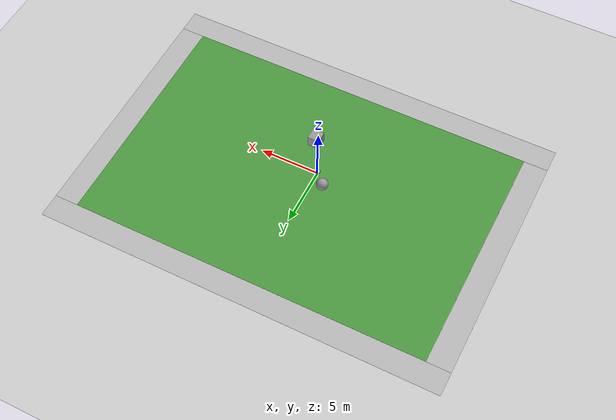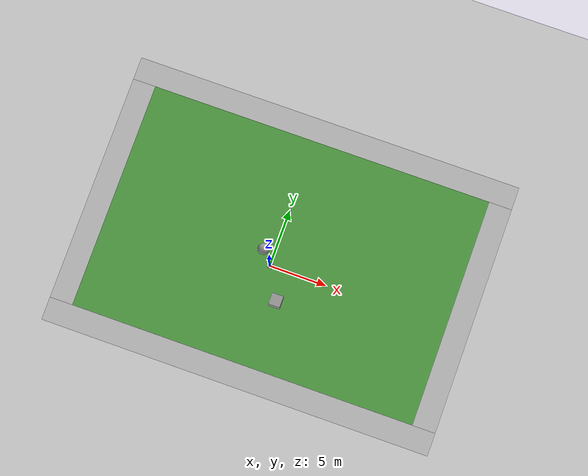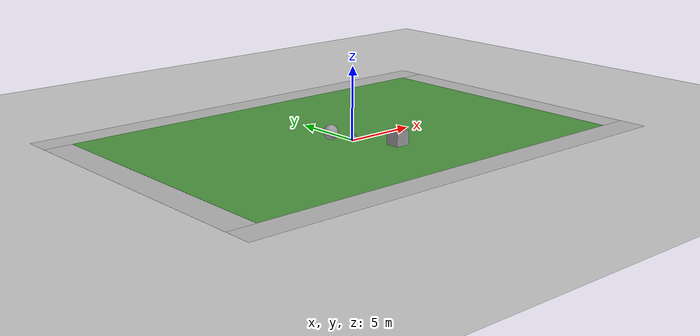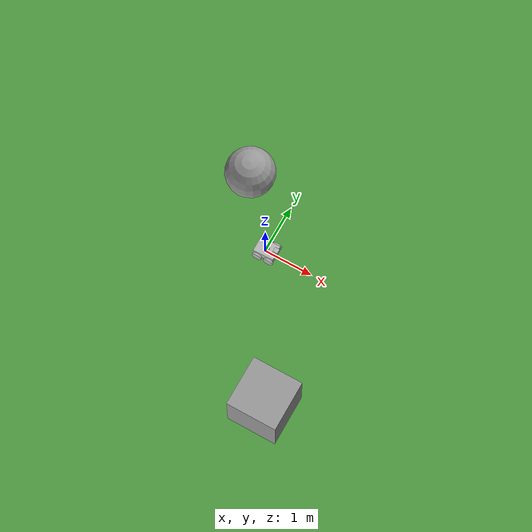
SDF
<sdf version="1.7">
 <world name="default">
  <light name="sun" type="directional">
   <pose>0 0 10 0 -0 0</pose>
   <diffuse>0.8 0.8 0.8 1</diffuse>
   <specular>0.2 0.2 0.2 1</specular>
   <attenuation>
    <range>1000</range>
    <constant>0.9</constant>
    <linear>0.01</linear>
    <quadratic>0.001</quadratic>
   </attenuation>
   <direction>-0.5 0.1 -0.9</direction>
   <spot><inner_angle>0</inner_angle><outer_angle>0</outer_angle><falloff>0</falloff></spot>
  </light>
  <model name="ground_plane">
   <static>1</static>
   <link name="link">
    <collision name="collision">
     <geometry><plane><normal>0 0 1</normal><size>100 100</size></plane></geometry>
     <surface><friction><ode><mu>100</mu><mu2>50</mu2></ode></friction></surface>
    </collision>
    <visual name="visual">
     <cast_shadows>0</cast_shadows>
     <geometry><plane><normal>0 0 1</normal><size>100 100</size></plane></geometry>
     <material>
      <script><uri>file://media/materials/scripts/gazebo.material</uri><name>Gazebo/Grey</name></script>
     </material>
    </visual>
   </link>
  </model>
  <gravity>0 0 -9.8</gravity>
  <magnetic_field>6e-06 2.3e-05 -4.2e-05</magnetic_field>
  <atmosphere type="adiabatic"/>
  <physics type="ode">
   <max_step_size>0.001</max_step_size>
   <real_time_factor>1</real_time_factor>
   <real_time_update_rate>1000</real_time_update_rate>
  </physics>
  <scene><ambient>0.4 0.4 0.4 1</ambient><background>0.7 0.7 0.7 1</background><shadows>1</shadows></scene>
  <spherical_coordinates>
   <surface_model>EARTH_WGS84</surface_model>
   <latitude_deg>43.6532</latitude_deg>
   <longitude_deg>-79.3832</longitude_deg>
   <elevation>0</elevation>
   <heading_deg>0</heading_deg>
  </spherical_coordinates>
  <model name="unit_box">
   <pose>1.51272 -2.71061 0.51 0 -0 0</pose>
   <link name="link">
    <inertial>
     <mass>1</mass>
     <inertia>
      <ixx>0.166667</ixx>
      <ixy>0</ixy>
      <ixz>0</ixz>
      <iyy>0.166667</iyy>
      <iyz>0</iyz>
      <izz>0.166667</izz>
     </inertia>
    </inertial>
    <collision name="collision"><geometry><box><size>1 1 1</size></box></geometry></collision>
    <visual name="visual">
     <geometry><box><size>1 1 1</size></box></geometry>
     <material>
      <script><name>Gazebo/Grey</name><uri>file://media/materials/scripts/gazebo.material</uri></script>
     </material>
    </visual>
   </link>
  </model>
  <model name="unit_sphere">
   <pose>-0.944955 1.09802 0.51 0 -0 0</pose>
   <link name="link">
    <inertial>
     <mass>1</mass>
     <inertia><ixx>0.1</ixx><ixy>0</ixy><ixz>0</ixz><iyy>0.1</iyy><iyz>0</iyz><izz>0.1</izz></inertia>
    </inertial>
    <collision name="collision"><geometry><sphere><radius>0.5</radius></sphere></geometry></collision>
    <visual name="visual">
     <geometry><sphere><radius>0.5</radius></sphere></geometry>
     <material>
      <script><name>Gazebo/Grey</name><uri>file://media/materials/scripts/gazebo.material</uri></script>
     </material>
    </visual>
   </link>
  </model>
  <audio><device>default</device></audio>
  <model name="sam_bot">
   <link name="base_link">
    <inertial>
     <pose>0.001305 0 0.002219 1.5708 -0 1.5708</pose>
     <mass>15.325</mass>
     <inertia>
      <ixx>0.271282</ixx>
      <ixy>-1.00723e-18</ixy>
      <ixz>-1.12571e-18</ixz>
      <iyy>0.345932</iyy>
      <iyz>-0.00355563</iyz>
      <izz>0.166933</izz>
     </inertia>
    </inertial>
    <collision name="base_link_collision"><geometry><box><size>0.42 0.31 0.18</size></box></geometry></collision>
    <collision name="base_link_fixed_joint_lump__gps_link_collision_1">
     <pose>0.2 0 0.18 0 -0 0</pose>
     <geometry><box><size>0.1 0.1 0.1</size></box></geometry>
    </collision>
    <collision name="base_link_fixed_joint_lump__imu_link_collision_2">
     <pose>0 0 0.01 0 -0 0</pose>
     <geometry><box><size>0.1 0.1 0.1</size></box></geometry>
    </collision>
    <collision name="base_link_fixed_joint_lump__lidar_link_collision_3">
     <pose>0 0 0.12 0 -0 0</pose>
     <geometry><cylinder><length>0.055</length><radius>0.0508</radius></cylinder></geometry>
    </collision>
    <visual name="base_link_visual"><geometry><box><size>0.42 0.31 0.18</size></box></geometry></visual>
    <visual name="base_link_fixed_joint_lump__gps_link_visual_1">
     <pose>0.2 0 0.18 0 -0 0</pose>
     <geometry><box><size>0.1 0.1 0.1</size></box></geometry>
    </visual>
    <visual name="base_link_fixed_joint_lump__imu_link_visual_2">
     <pose>0 0 0.01 0 -0 0</pose>
     <geometry><box><size>0.1 0.1 0.1</size></box></geometry>
    </visual>
    <visual name="base_link_fixed_joint_lump__lidar_link_visual_3">
     <pose>0 0 0.12 0 -0 0</pose>
     <geometry><cylinder><length>0.055</length><radius>0.0508</radius></cylinder></geometry>
    </visual>
    <sensor name="gps_sensor" type="gps">
     <always_on>1</always_on>
     <update_rate>5</update_rate>
     <plugin name="gps_plugin" filename="libgazebo_ros_gps_sensor.so">
      <ros><namespace>/</namespace><use_sim_time>1</use_sim_time><remapping>~/out:=gps/fix</remapping></ros>
      <frame_name>gps_link</frame_name>
     </plugin>
     <pose>0.2 0 0.18 0 -0 0</pose>
     <use_clock>1</use_clock>
    </sensor>
    <sensor name="imu_sensor" type="imu">
     <plugin name="imu_plugin" filename="libgazebo_ros_imu_sensor.so">
      <ros><namespace>/demo</namespace><remapping>~/out:=imu</remapping></ros>
      <initial_orientation_as_reference>0</initial_orientation_as_reference>
     </plugin>
     <always_on>1</always_on>
     <update_rate>100</update_rate>
     <visualize>1</visualize>
     <imu>
      <angular_velocity>
       <x>
        <noise type="gaussian">
         <mean>0</mean>
         <stddev>0.0002</stddev>
         <bias_mean>7.5e-06</bias_mean>
         <bias_stddev>8e-07</bias_stddev>
        </noise>
       </x>
       <y>
        <noise type="gaussian">
         <mean>0</mean>
         <stddev>0.0002</stddev>
         <bias_mean>7.5e-06</bias_mean>
         <bias_stddev>8e-07</bias_stddev>
        </noise>
       </y>
       <z>
        <noise type="gaussian">
         <mean>0</mean>
         <stddev>0.0002</stddev>
         <bias_mean>7.5e-06</bias_mean>
         <bias_stddev>8e-07</bias_stddev>
        </noise>
       </z>
      </angular_velocity>
      <linear_acceleration>
       <x>
        <noise type="gaussian">
         <mean>0</mean>
         <stddev>0.017</stddev>
         <bias_mean>0.1</bias_mean>
         <bias_stddev>0.001</bias_stddev>
        </noise>
       </x>
       <y>
        <noise type="gaussian">
         <mean>0</mean>
         <stddev>0.017</stddev>
         <bias_mean>0.1</bias_mean>
         <bias_stddev>0.001</bias_stddev>
        </noise>
       </y>
       <z>
        <noise type="gaussian">
         <mean>0</mean>
         <stddev>0.017</stddev>
         <bias_mean>0.1</bias_mean>
         <bias_stddev>0.001</bias_stddev>
        </noise>
       </z>
      </linear_acceleration>
     </imu>
     <pose>0 0 0.01 0 -0 0</pose>
    </sensor>
    <sensor name="lidar" type="ray">
     <always_on>1</always_on>
     <visualize>1</visualize>
     <update_rate>5</update_rate>
     <ray>
      <scan>
       <horizontal>
        <samples>360</samples>
        <resolution>1</resolution>
        <min_angle>0</min_angle>
        <max_angle>6.28</max_angle>
       </horizontal>
       <vertical><samples>1</samples><min_angle>0</min_angle><max_angle>0</max_angle></vertical>
      </scan>
      <range><min>0.12</min><max>3.5</max><resolution>0.015</resolution></range>
      <noise><type>gaussian</type><mean>0</mean><stddev>0.01</stddev></noise>
     </ray>
     <plugin name="scan" filename="libgazebo_ros_ray_sensor.so">
      <ros><remapping>~/out:=scan</remapping></ros>
      <output_type>sensor_msgs/LaserScan</output_type>
      <frame_name>lidar_link</frame_name>
     </plugin>
     <pose>0 0 0.12 0 -0 0</pose>
    </sensor>
   </link>
   <joint name="camera_pan_joint" type="revolute">
    <pose relative_to="base_link">0.215 0 0.18 0 -0 0</pose>
    <parent>base_link</parent>
    <child>camera_pan_link</child>
    <axis>
     <xyz>0 0 1</xyz>
     <limit><lower>-1.5708</lower><upper>1.5708</upper><effort>5</effort><velocity>3</velocity></limit>
     <dynamics>
      <damping>0.2</damping>
      <friction>0.1</friction>
      <spring_reference>0</spring_reference>
      <spring_stiffness>0</spring_stiffness>
     </dynamics>
    </axis>
    <physics><ode><limit><cfm>0</cfm><erp>0.2</erp></limit></ode></physics>
    <provide_feedback>1</provide_feedback>
    <ki>0.01</ki>
    <fmax>5.0</fmax>
   </joint>
   <link name="camera_pan_link">
    <pose relative_to="camera_pan_joint">0 0 0 0 -0 0</pose>
    <inertial>
     <pose>0 0 0 1.5708 -0 0</pose>
     <mass>0.085</mass>
     <inertia>
      <ixx>0.00101292</ixx>
      <ixy>0</ixy>
      <ixz>0</ixz>
      <iyy>0.00101292</iyy>
      <iyz>0</iyz>
      <izz>0.0010225</izz>
     </inertia>
    </inertial>
    <collision name="camera_pan_link_collision">
     <geometry><cylinder><length>0.02</length><radius>0.03</radius></cylinder></geometry>
    </collision>
    <collision name="camera_pan_link_fixed_joint_lump__camera_link_collision_1">
     <geometry><box><size>0.015 0.13 0.022</size></box></geometry>
    </collision>
    <visual name="camera_pan_link_visual">
     <geometry><cylinder><length>0.02</length><radius>0.03</radius></cylinder></geometry>
    </visual>
    <visual name="camera_pan_link_fixed_joint_lump__camera_link_visual_1">
     <geometry><box><size>0.015 0.13 0.022</size></box></geometry>
    </visual>
    <sensor name="depth_camera" type="depth">
     <visualize>1</visualize>
     <update_rate>30</update_rate>
     <camera name="camera">
      <horizontal_fov>1.0472</horizontal_fov>
      <image><width>640</width><height>480</height><format>R8G8B8</format></image>
      <clip><near>0.05</near><far>3</far></clip>
     </camera>
     <plugin name="depth_camera_controller" filename="libgazebo_ros_camera.so">
      <baseline>0.2</baseline>
      <alwaysOn>1</alwaysOn>
      <updateRate>0.0</updateRate>
      <frame_name>camera_depth_frame</frame_name>
      <pointCloudCutoff>0.5</pointCloudCutoff>
      <pointCloudCutoffMax>3.0</pointCloudCutoffMax>
      <distortionK1>0</distortionK1>
      <distortionK2>0</distortionK2>
      <distortionK3>0</distortionK3>
      <distortionT1>0</distortionT1>
      <distortionT2>0</distortionT2>
      <CxPrime>0</CxPrime>
      <Cx>0</Cx>
      <Cy>0</Cy>
      <focalLength>0</focalLength>
      <hackBaseline>0</hackBaseline>
     </plugin>
    </sensor>
   </link>
   <joint name="drivewhl_fl_joint" type="revolute">
    <pose relative_to="base_link">0.12 0.18 -0.05 0 -0 0</pose>
    <parent>base_link</parent>
    <child>drivewhl_fl_link</child>
    <axis>
     <xyz>0 1 0</xyz>
     <limit><lower>-1e+16</lower><upper>1e+16</upper></limit>
     <dynamics><spring_reference>0</spring_reference><spring_stiffness>0</spring_stiffness></dynamics>
    </axis>
   </joint>
   <link name="drivewhl_fl_link">
    <pose relative_to="drivewhl_fl_joint">0 0 0 0 -0 0</pose>
    <inertial>
     <pose>0 0 0 1.5708 -0 0</pose>
     <mass>0.5</mass>
     <inertia>
      <ixx>0.00131667</ixx>
      <ixy>0</ixy>
      <ixz>0</ixz>
      <iyy>0.00131667</iyy>
      <iyz>0</iyz>
      <izz>0.0025</izz>
     </inertia>
    </inertial>
    <collision name="drivewhl_fl_link_collision">
     <pose>0 0 0 1.5708 -0 0</pose>
     <geometry><cylinder><length>0.04</length><radius>0.1</radius></cylinder></geometry>
    </collision>
    <visual name="drivewhl_fl_link_visual">
     <pose>0 0 0 1.5708 -0 0</pose>
     <geometry><cylinder><length>0.04</length><radius>0.1</radius></cylinder></geometry>
    </visual>
   </link>
   <joint name="drivewhl_fr_joint" type="revolute">
    <pose relative_to="base_link">0.12 -0.18 -0.05 0 -0 0</pose>
    <parent>base_link</parent>
    <child>drivewhl_fr_link</child>
    <axis>
     <xyz>0 1 0</xyz>
     <limit><lower>-1e+16</lower><upper>1e+16</upper></limit>
     <dynamics><spring_reference>0</spring_reference><spring_stiffness>0</spring_stiffness></dynamics>
    </axis>
   </joint>
   <link name="drivewhl_fr_link">
    <pose relative_to="drivewhl_fr_joint">0 0 0 0 -0 0</pose>
    <inertial>
     <pose>0 0 0 1.5708 -0 0</pose>
     <mass>0.5</mass>
     <inertia>
      <ixx>0.00131667</ixx>
      <ixy>0</ixy>
      <ixz>0</ixz>
      <iyy>0.00131667</iyy>
      <iyz>0</iyz>
      <izz>0.0025</izz>
     </inertia>
    </inertial>
    <collision name="drivewhl_fr_link_collision">
     <pose>0 0 0 1.5708 -0 0</pose>
     <geometry><cylinder><length>0.04</length><radius>0.1</radius></cylinder></geometry>
    </collision>
    <visual name="drivewhl_fr_link_visual">
     <pose>0 0 0 1.5708 -0 0</pose>
     <geometry><cylinder><length>0.04</length><radius>0.1</radius></cylinder></geometry>
    </visual>
   </link>
   <joint name="drivewhl_rl_joint" type="revolute">
    <pose relative_to="base_link">-0.12 0.18 -0.05 0 -0 0</pose>
    <parent>base_link</parent>
    <child>drivewhl_rl_link</child>
    <axis>
     <xyz>0 1 0</xyz>
     <limit><lower>-1e+16</lower><upper>1e+16</upper></limit>
     <dynamics><spring_reference>0</spring_reference><spring_stiffness>0</spring_stiffness></dynamics>
    </axis>
   </joint>
   <link name="drivewhl_rl_link">
    <pose relative_to="drivewhl_rl_joint">0 0 0 0 -0 0</pose>
    <inertial>
     <pose>0 0 0 1.5708 -0 0</pose>
     <mass>0.5</mass>
     <inertia>
      <ixx>0.00131667</ixx>
      <ixy>0</ixy>
      <ixz>0</ixz>
      <iyy>0.00131667</iyy>
      <iyz>0</iyz>
      <izz>0.0025</izz>
     </inertia>
    </inertial>
    <collision name="drivewhl_rl_link_collision">
     <pose>0 0 0 1.5708 -0 0</pose>
     <geometry><cylinder><length>0.04</length><radius>0.1</radius></cylinder></geometry>
    </collision>
    <visual name="drivewhl_rl_link_visual">
     <pose>0 0 0 1.5708 -0 0</pose>
     <geometry><cylinder><length>0.04</length><radius>0.1</radius></cylinder></geometry>
    </visual>
   </link>
   <joint name="drivewhl_rr_joint" type="revolute">
    <pose relative_to="base_link">-0.12 -0.18 -0.05 0 -0 0</pose>
    <parent>base_link</parent>
    <child>drivewhl_rr_link</child>
    <axis>
     <xyz>0 1 0</xyz>
     <limit><lower>-1e+16</lower><upper>1e+16</upper></limit>
     <dynamics><spring_reference>0</spring_reference><spring_stiffness>0</spring_stiffness></dynamics>
    </axis>
   </joint>
   <link name="drivewhl_rr_link">
    <pose relative_to="drivewhl_rr_joint">0 0 0 0 -0 0</pose>
    <inertial>
     <pose>0 0 0 1.5708 -0 0</pose>
     <mass>0.5</mass>
     <inertia>
      <ixx>0.00131667</ixx>
      <ixy>0</ixy>
      <ixz>0</ixz>
      <iyy>0.00131667</iyy>
      <iyz>0</iyz>
      <izz>0.0025</izz>
     </inertia>
    </inertial>
    <collision name="drivewhl_rr_link_collision">
     <pose>0 0 0 1.5708 -0 0</pose>
     <geometry><cylinder><length>0.04</length><radius>0.1</radius></cylinder></geometry>
    </collision>
    <visual name="drivewhl_rr_link_visual">
     <pose>0 0 0 1.5708 -0 0</pose>
     <geometry><cylinder><length>0.04</length><radius>0.1</radius></cylinder></geometry>
    </visual>
   </link>
   <plugin name="diff_drive" filename="libgazebo_ros_diff_drive.so">
    <ros><namespace>/demo</namespace><remap from="cmd_vel" to="/cmd_vel"/></ros>
    <num_wheel_pairs>2</num_wheel_pairs>
    <left_joint>drivewhl_rl_joint</left_joint>
    <left_joint>drivewhl_fl_joint</left_joint>
    <right_joint>drivewhl_rr_joint</right_joint>
    <right_joint>drivewhl_fr_joint</right_joint>
    <wheel_separation>0.31</wheel_separation>
    <wheel_diameter>0.2</wheel_diameter>
    <max_wheel_torque>20</max_wheel_torque>
    <max_wheel_acceleration>1.0</max_wheel_acceleration>
    <publish_odom>1</publish_odom>
    <publish_odom_tf>0</publish_odom_tf>
    <publish_wheel_tf>1</publish_wheel_tf>
    <odometry_frame>odom</odometry_frame>
    <robot_base_frame>base_link</robot_base_frame>
   </plugin>
   <static>0</static>
   <plugin name="gazebo_ros2_control" filename="libgazebo_ros2_control.so">
    <robot_param>robot_description</robot_param>
    <robot_param_node>robot_state_publisher</robot_param_node>
    <parameters>/home/toni/Workspace/nav2_ws/install/sam_bot_description/share/sam_bot_description/config/sam_bot_ros2_control.yaml</parameters>
   </plugin>
   <pose>0.045315 -0.018592 0.16 0 -0 0.024587</pose>
  </model>
  <model name="robocup_3d_field">
   <static>1</static>
   <link name="field">
    <pose>0 0 0.01 0 -0 0</pose>
    <collision name="collision">
     <geometry><plane><normal>0 0 1</normal><size>30 20</size></plane></geometry>
     <surface><friction><ode><mu>100</mu><mu2>50</mu2></ode></friction></surface>
    </collision>
    <visual name="base1">
     <pose>0 11 0.001 0 -0 0</pose>
     <cast_shadows>0</cast_shadows>
     <geometry><plane><normal>0 0 1</normal><size>34 2</size></plane></geometry>
     <material>
      <script>
       <uri>model://robocup_3Dsim_field/materials/scripts/</uri>
       <uri>model://robocup_3Dsim_field/materials/textures/</uri>
       <name>RoboCup/FieldBorder</name>
      </script>
     </material>
    </visual>
    <visual name="base2">
     <pose>0 -11 0.001 0 -0 0</pose>
     <cast_shadows>0</cast_shadows>
     <geometry><plane><normal>0 0 1</normal><size>34 2</size></plane></geometry>
     <material>
      <script>
       <uri>model://robocup_3Dsim_field/materials/scripts/</uri>
       <uri>model://robocup_3Dsim_field/materials/textures/</uri>
       <name>RoboCup/FieldBorder</name>
      </script>
     </material>
    </visual>
    <visual name="base3">
     <pose>16 0 0.001 0 -0 0</pose>
     <cast_shadows>0</cast_shadows>
     <geometry><plane><normal>0 0 1</normal><size>2 20</size></plane></geometry>
     <material>
      <script>
       <uri>model://robocup_3Dsim_field/materials/scripts/</uri>
       <uri>model://robocup_3Dsim_field/materials/textures/</uri>
       <name>RoboCup/FieldBorder</name>
      </script>
     </material>
    </visual>
    <visual name="base4">
     <pose>-16 0 0.001 0 -0 0</pose>
     <cast_shadows>0</cast_shadows>
     <geometry><plane><normal>0 0 1</normal><size>2 20</size></plane></geometry>
     <material>
      <script>
       <uri>model://robocup_3Dsim_field/materials/scripts/</uri>
       <uri>model://robocup_3Dsim_field/materials/textures/</uri>
       <name>RoboCup/FieldBorder</name>
      </script>
     </material>
    </visual>
    <visual name="carpet">
     <cast_shadows>0</cast_shadows>
     <geometry><plane><normal>0 0 1</normal><size>30 20</size></plane></geometry>
     <material>
      <script>
       <uri>model://robocup_3Dsim_field/materials/scripts/</uri>
       <uri>model://robocup_3Dsim_field/materials/textures/</uri>
       <name>RoboCup/Grass</name>
      </script>
     </material>
    </visual>
   </link>
   <pose>0.580617 1.35482 0 0 -0 0</pose>
  </model>
 </world>
</sdf>
